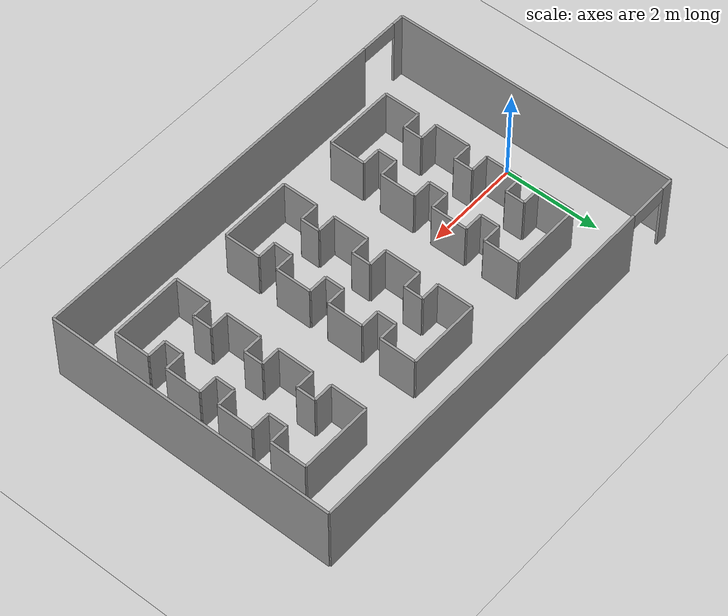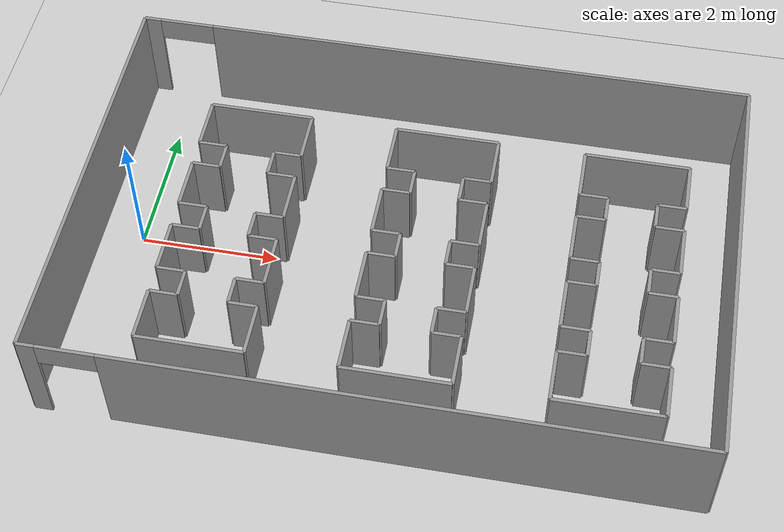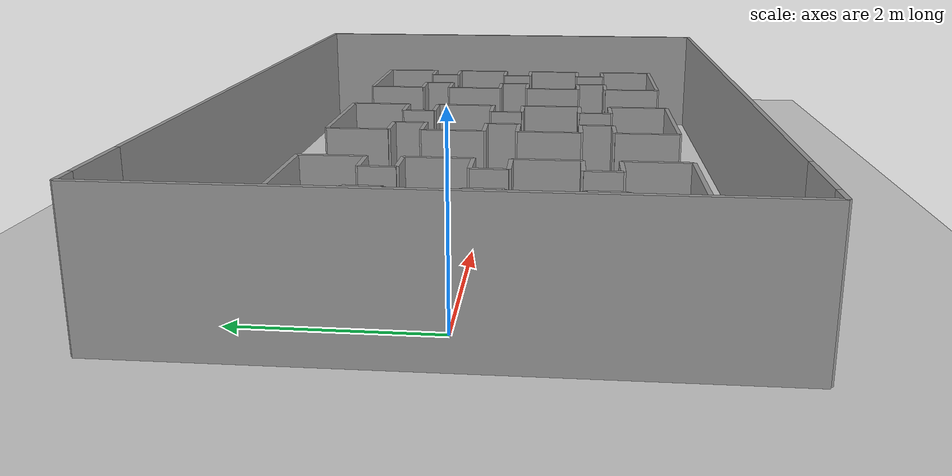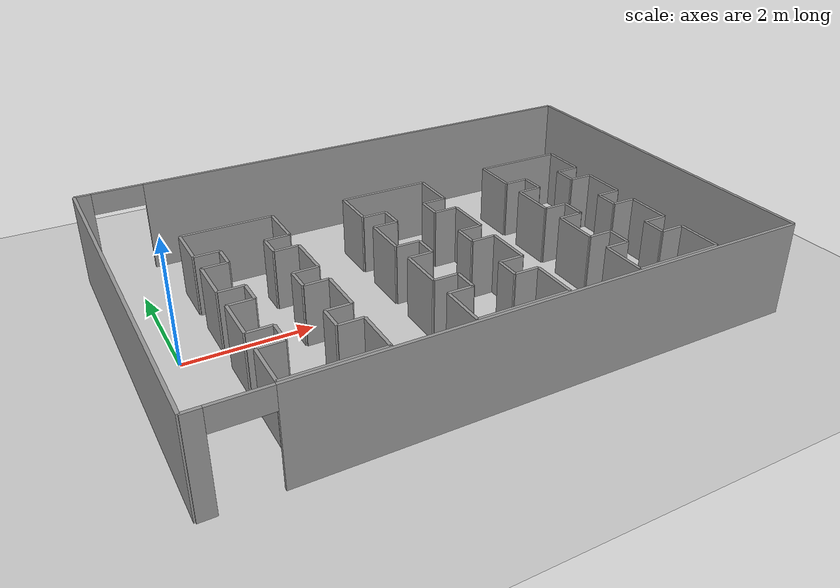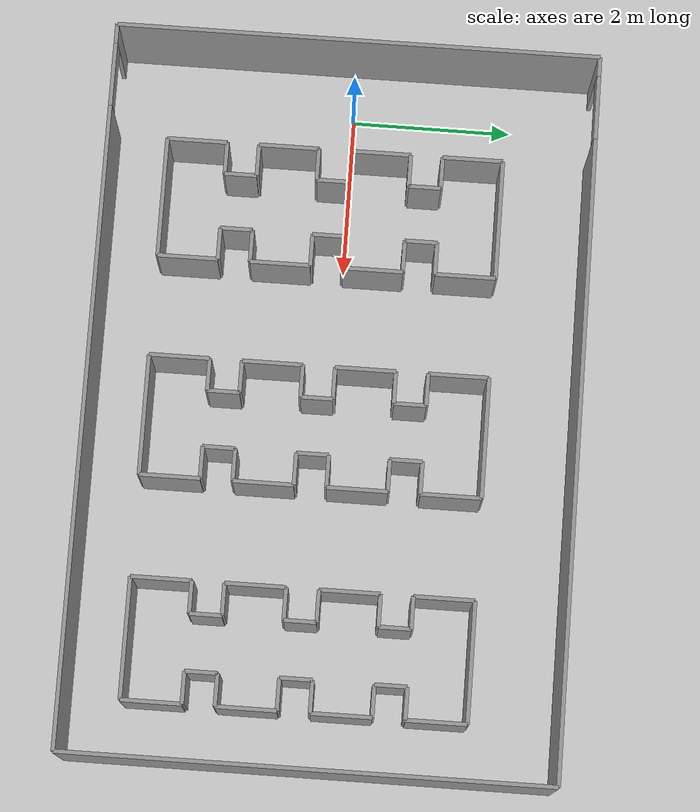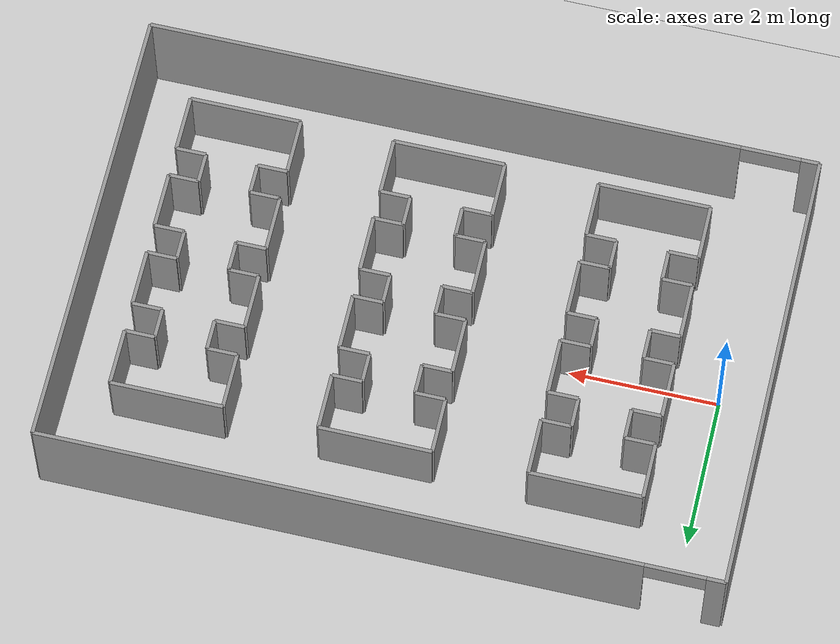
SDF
<sdf version="1.7">
 <world name="default">
  <light name="sun" type="directional">
   <pose>0 0 10 0 -0 0</pose>
   <diffuse>0.8 0.8 0.8 1</diffuse>
   <specular>0.2 0.2 0.2 1</specular>
   <attenuation>
    <range>1000</range>
    <constant>0.9</constant>
    <linear>0.01</linear>
    <quadratic>0.001</quadratic>
   </attenuation>
   <direction>-0.5 0.1 -0.9</direction>
   <spot><inner_angle>0</inner_angle><outer_angle>0</outer_angle><falloff>0</falloff></spot>
  </light>
  <model name="ground_plane">
   <static>1</static>
   <link name="link">
    <collision name="collision">
     <geometry><plane><normal>0 0 1</normal><size>100 100</size></plane></geometry>
     <surface>
      <contact><collide_bitmask>65535</collide_bitmask></contact>
      <friction><ode><mu>100</mu><mu2>50</mu2></ode></friction>
     </surface>
    </collision>
    <visual name="visual">
     <cast_shadows>0</cast_shadows>
     <geometry><plane><normal>0 0 1</normal><size>100 100</size></plane></geometry>
     <material>
      <script><uri>file://media/materials/scripts/gazebo.material</uri><name>Gazebo/Grey</name></script>
     </material>
    </visual>
   </link>
  </model>
  <gravity>0 0 -9.8</gravity>
  <magnetic_field>6e-06 2.3e-05 -4.2e-05</magnetic_field>
  <atmosphere type="adiabatic"/>
  <physics type="ode">
   <max_step_size>0.001</max_step_size>
   <real_time_factor>1</real_time_factor>
   <real_time_update_rate>1000</real_time_update_rate>
  </physics>
  <scene><ambient>0.4 0.4 0.4 1</ambient><background>0.7 0.7 0.7 1</background><shadows>1</shadows></scene>
  <audio><device>default</device></audio>
  <spherical_coordinates>
   <surface_model>EARTH_WGS84</surface_model>
   <latitude_deg>0</latitude_deg>
   <longitude_deg>0</longitude_deg>
   <elevation>0</elevation>
   <heading_deg>0</heading_deg>
  </spherical_coordinates>
  <model name="Storage_map">
   <pose>3.86 0 0 0 -0 0</pose>
   <static>1</static>
   <link name="Wall_up_1">
    <collision name="Wall_up_1_Collision">
     <geometry><box><size>0.25 0.05 1.5</size></box></geometry>
     <pose>-4.375 3 0.75 0 -0 0</pose>
    </collision>
    <visual name="Wall_up_1_Visual">
     <geometry><box><size>0.25 0.05 1.5</size></box></geometry>
     <pose>-4.375 3 0.75 0 -0 0</pose>
     <material>
      <script><uri>file://media/materials/scripts/gazebo.material</uri><name>Gazebo/Grey</name></script>
      <ambient>1 1 1 1</ambient>
     </material>
    </visual>
   </link>
   <link name="Wall_up_2">
    <collision name="Wall_up_2_Collision">
     <geometry><box><size>0.8 0.05 0.35</size></box></geometry>
     <pose>-3.85 3 1.325 0 -0 0</pose>
    </collision>
    <visual name="Wall_up_2_Visual">
     <geometry><box><size>0.8 0.05 0.35</size></box></geometry>
     <pose>-3.85 3 1.325 0 -0 0</pose>
     <material>
      <script><uri>file://media/materials/scripts/gazebo.material</uri><name>Gazebo/Grey</name></script>
      <ambient>1 1 1 1</ambient>
     </material>
    </visual>
   </link>
   <link name="Wall_up_3">
    <collision name="Wall_up_3_Collision">
     <geometry><box><size>7.95 0.05 1.5</size></box></geometry>
     <pose>0.525 3 0.75 0 -0 0</pose>
    </collision>
    <visual name="Wall_up_3_Visual">
     <geometry><box><size>7.95 0.05 1.5</size></box></geometry>
     <pose>0.525 3 0.75 0 -0 0</pose>
     <material>
      <script><uri>file://media/materials/scripts/gazebo.material</uri><name>Gazebo/Grey</name></script>
      <ambient>1 1 1 1</ambient>
     </material>
    </visual>
   </link>
   <link name="Wall_right">
    <collision name="Wall_right_Collision">
     <geometry><box><size>0.05 6 1.5</size></box></geometry>
     <pose>4.5 0 0.75 0 -0 0</pose>
    </collision>
    <visual name="Wall_right_Visual">
     <geometry><box><size>0.05 6 1.5</size></box></geometry>
     <pose>4.5 0 0.75 0 -0 0</pose>
     <material>
      <script><uri>file://media/materials/scripts/gazebo.material</uri><name>Gazebo/Grey</name></script>
      <ambient>1 1 1 1</ambient>
     </material>
    </visual>
   </link>
   <link name="Wall_down_1">
    <collision name="Wall_down_1_Collision">
     <geometry><box><size>7.95 0.05 1.5</size></box></geometry>
     <pose>0.525 -3 0.75 0 -0 0</pose>
    </collision>
    <visual name="Wall_down_1_Visual">
     <geometry><box><size>7.95 0.05 1.5</size></box></geometry>
     <pose>0.525 -3 0.75 0 -0 0</pose>
     <material>
      <script><uri>file://media/materials/scripts/gazebo.material</uri><name>Gazebo/Grey</name></script>
      <ambient>1 1 1 1</ambient>
     </material>
    </visual>
   </link>
   <link name="Wall_down_2">
    <collision name="Wall_down_2_Collision">
     <geometry><box><size>0.8 0.05 0.35</size></box></geometry>
     <pose>-3.85 -3 1.325 0 -0 0</pose>
    </collision>
    <visual name="Wall_down_2_Visual">
     <geometry><box><size>0.8 0.05 0.35</size></box></geometry>
     <pose>-3.85 -3 1.325 0 -0 0</pose>
     <material>
      <script><uri>file://media/materials/scripts/gazebo.material</uri><name>Gazebo/Grey</name></script>
      <ambient>1 1 1 1</ambient>
     </material>
    </visual>
   </link>
   <link name="Wall_down_3">
    <collision name="Wall_down_3_Collision">
     <geometry><box><size>0.25 0.05 1.5</size></box></geometry>
     <pose>-4.375 -3 0.75 0 -0 0</pose>
    </collision>
    <visual name="Wall_down_3_Visual">
     <geometry><box><size>0.25 0.05 1.5</size></box></geometry>
     <pose>-4.375 -3 0.75 0 -0 0</pose>
     <material>
      <script><uri>file://media/materials/scripts/gazebo.material</uri><name>Gazebo/Grey</name></script>
      <ambient>1 1 1 1</ambient>
     </material>
    </visual>
   </link>
   <link name="Wall_left">
    <collision name="Wall_left_Collision">
     <geometry><box><size>0.05 6 1.5</size></box></geometry>
     <pose>-4.5 0 0.75 0 -0 0</pose>
    </collision>
    <visual name="Wall_left_Visual">
     <geometry><box><size>0.05 6 1.5</size></box></geometry>
     <pose>-4.5 0 0.75 0 -0 0</pose>
     <material>
      <script><uri>file://media/materials/scripts/gazebo.material</uri><name>Gazebo/Grey</name></script>
      <ambient>1 1 1 1</ambient>
     </material>
    </visual>
   </link>
   <link name="Wall_shell_0_wall_0">
    <collision name="Wall_shell_0_wall_0_Collision">
     <geometry><box><size>1.5 0.05 1</size></box></geometry>
     <pose>-2.47 1.9 0.5 0 -0 0</pose>
    </collision>
    <visual name="Wall_shell_0_wall_0_Visual">
     <geometry><box><size>1.5 0.05 1</size></box></geometry>
     <pose>-2.47 1.9 0.5 0 -0 0</pose>
     <material>
      <script><uri>file://media/materials/scripts/gazebo.material</uri><name>Gazebo/Grey</name></script>
      <ambient>1 1 1 1</ambient>
     </material>
    </visual>
   </link>
   <link name="Wall_shell_0_wall_1">
    <collision name="Wall_shell_0_wall_1_Collision">
     <geometry><box><size>0.05 0.75 1</size></box></geometry>
     <pose>-1.72 1.525 0.5 0 -0 0</pose>
    </collision>
    <visual name="Wall_shell_0_wall_1_Visual">
     <geometry><box><size>0.05 0.75 1</size></box></geometry>
     <pose>-1.72 1.525 0.5 0 -0 0</pose>
     <material>
      <script><uri>file://media/materials/scripts/gazebo.material</uri><name>Gazebo/Grey</name></script>
      <ambient>1 1 1 1</ambient>
     </material>
    </visual>
   </link>
   <link name="Wall_shell_0_wall_2">
    <collision name="Wall_shell_0_wall_2_Collision">
     <geometry><box><size>0.4 0.05 1</size></box></geometry>
     <pose>-1.92 1.15 0.5 0 -0 0</pose>
    </collision>
    <visual name="Wall_shell_0_wall_2_Visual">
     <geometry><box><size>0.4 0.05 1</size></box></geometry>
     <pose>-1.92 1.15 0.5 0 -0 0</pose>
     <material>
      <script><uri>file://media/materials/scripts/gazebo.material</uri><name>Gazebo/Grey</name></script>
      <ambient>1 1 1 1</ambient>
     </material>
    </visual>
   </link>
   <link name="Wall_shell_0_wall_3">
    <collision name="Wall_shell_0_wall_3_Collision">
     <geometry><box><size>0.05 0.4 1</size></box></geometry>
     <pose>-2.12 0.95 0.5 0 -0 0</pose>
    </collision>
    <visual name="Wall_shell_0_wall_3_Visual">
     <geometry><box><size>0.05 0.4 1</size></box></geometry>
     <pose>-2.12 0.95 0.5 0 -0 0</pose>
     <material>
      <script><uri>file://media/materials/scripts/gazebo.material</uri><name>Gazebo/Grey</name></script>
      <ambient>1 1 1 1</ambient>
     </material>
    </visual>
   </link>
   <link name="Wall_shell_0_wall_4">
    <collision name="Wall_shell_0_wall_4_Collision">
     <geometry><box><size>0.4 0.05 1</size></box></geometry>
     <pose>-1.92 0.75 0.5 0 -0 0</pose>
    </collision>
    <visual name="Wall_shell_0_wall_4_Visual">
     <geometry><box><size>0.4 0.05 1</size></box></geometry>
     <pose>-1.92 0.75 0.5 0 -0 0</pose>
     <material>
      <script><uri>file://media/materials/scripts/gazebo.material</uri><name>Gazebo/Grey</name></script>
      <ambient>1 1 1 1</ambient>
     </material>
    </visual>
   </link>
   <link name="Wall_shell_0_wall_5">
    <collision name="Wall_shell_0_wall_5_Collision">
     <geometry><box><size>0.05 0.75 1</size></box></geometry>
     <pose>-1.72 0.375 0.5 0 -0 0</pose>
    </collision>
    <visual name="Wall_shell_0_wall_5_Visual">
     <geometry><box><size>0.05 0.75 1</size></box></geometry>
     <pose>-1.72 0.375 0.5 0 -0 0</pose>
     <material>
      <script><uri>file://media/materials/scripts/gazebo.material</uri><name>Gazebo/Grey</name></script>
      <ambient>1 1 1 1</ambient>
     </material>
    </visual>
   </link>
   <link name="Wall_shell_0_wall_6">
    <collision name="Wall_shell_0_wall_6_Collision">
     <geometry><box><size>0.4 0.05 1</size></box></geometry>
     <pose>-1.92 -0 0.5 0 -0 0</pose>
    </collision>
    <visual name="Wall_shell_0_wall_6_Visual">
     <geometry><box><size>0.4 0.05 1</size></box></geometry>
     <pose>-1.92 -0 0.5 0 -0 0</pose>
     <material>
      <script><uri>file://media/materials/scripts/gazebo.material</uri><name>Gazebo/Grey</name></script>
      <ambient>1 1 1 1</ambient>
     </material>
    </visual>
   </link>
   <link name="Wall_shell_0_wall_7">
    <collision name="Wall_shell_0_wall_7_Collision">
     <geometry><box><size>0.05 0.4 1</size></box></geometry>
     <pose>-2.12 -0.2 0.5 0 -0 0</pose>
    </collision>
    <visual name="Wall_shell_0_wall_7_Visual">
     <geometry><box><size>0.05 0.4 1</size></box></geometry>
     <pose>-2.12 -0.2 0.5 0 -0 0</pose>
     <material>
      <script><uri>file://media/materials/scripts/gazebo.material</uri><name>Gazebo/Grey</name></script>
      <ambient>1 1 1 1</ambient>
     </material>
    </visual>
   </link>
   <link name="Wall_shell_0_wall_8">
    <collision name="Wall_shell_0_wall_8_Collision">
     <geometry><box><size>0.4 0.05 1</size></box></geometry>
     <pose>-1.92 -0.4 0.5 0 -0 0</pose>
    </collision>
    <visual name="Wall_shell_0_wall_8_Visual">
     <geometry><box><size>0.4 0.05 1</size></box></geometry>
     <pose>-1.92 -0.4 0.5 0 -0 0</pose>
     <material>
      <script><uri>file://media/materials/scripts/gazebo.material</uri><name>Gazebo/Grey</name></script>
      <ambient>1 1 1 1</ambient>
     </material>
    </visual>
   </link>
   <link name="Wall_shell_0_wall_9">
    <collision name="Wall_shell_0_wall_9_Collision">
     <geometry><box><size>0.05 0.75 1</size></box></geometry>
     <pose>-1.72 -0.775 0.5 0 -0 0</pose>
    </collision>
    <visual name="Wall_shell_0_wall_9_Visual">
     <geometry><box><size>0.05 0.75 1</size></box></geometry>
     <pose>-1.72 -0.775 0.5 0 -0 0</pose>
     <material>
      <script><uri>file://media/materials/scripts/gazebo.material</uri><name>Gazebo/Grey</name></script>
      <ambient>1 1 1 1</ambient>
     </material>
    </visual>
   </link>
   <link name="Wall_shell_0_wall_10">
    <collision name="Wall_shell_0_wall_10_Collision">
     <geometry><box><size>0.4 0.05 1</size></box></geometry>
     <pose>-1.92 -1.15 0.5 0 -0 0</pose>
    </collision>
    <visual name="Wall_shell_0_wall_10_Visual">
     <geometry><box><size>0.4 0.05 1</size></box></geometry>
     <pose>-1.92 -1.15 0.5 0 -0 0</pose>
     <material>
      <script><uri>file://media/materials/scripts/gazebo.material</uri><name>Gazebo/Grey</name></script>
      <ambient>1 1 1 1</ambient>
     </material>
    </visual>
   </link>
   <link name="Wall_shell_0_wall_11">
    <collision name="Wall_shell_0_wall_11_Collision">
     <geometry><box><size>0.05 0.4 1</size></box></geometry>
     <pose>-2.12 -1.35 0.5 0 -0 0</pose>
    </collision>
    <visual name="Wall_shell_0_wall_11_Visual">
     <geometry><box><size>0.05 0.4 1</size></box></geometry>
     <pose>-2.12 -1.35 0.5 0 -0 0</pose>
     <material>
      <script><uri>file://media/materials/scripts/gazebo.material</uri><name>Gazebo/Grey</name></script>
      <ambient>1 1 1 1</ambient>
     </material>
    </visual>
   </link>
   <link name="Wall_shell_0_wall_12">
    <collision name="Wall_shell_0_wall_12_Collision">
     <geometry><box><size>0.4 0.05 1</size></box></geometry>
     <pose>-1.92 -1.55 0.5 0 -0 0</pose>
    </collision>
    <visual name="Wall_shell_0_wall_12_Visual">
     <geometry><box><size>0.4 0.05 1</size></box></geometry>
     <pose>-1.92 -1.55 0.5 0 -0 0</pose>
     <material>
      <script><uri>file://media/materials/scripts/gazebo.material</uri><name>Gazebo/Grey</name></script>
      <ambient>1 1 1 1</ambient>
     </material>
    </visual>
   </link>
   <link name="Wall_shell_0_wall_13">
    <collision name="Wall_shell_0_wall_13_Collision">
     <geometry><box><size>0.05 0.75 1</size></box></geometry>
     <pose>-1.72 -1.925 0.5 0 -0 0</pose>
    </collision>
    <visual name="Wall_shell_0_wall_13_Visual">
     <geometry><box><size>0.05 0.75 1</size></box></geometry>
     <pose>-1.72 -1.925 0.5 0 -0 0</pose>
     <material>
      <script><uri>file://media/materials/scripts/gazebo.material</uri><name>Gazebo/Grey</name></script>
      <ambient>1 1 1 1</ambient>
     </material>
    </visual>
   </link>
   <link name="Wall_shell_0_wall_14">
    <collision name="Wall_shell_0_wall_14_Collision">
     <geometry><box><size>1.5 0.05 1</size></box></geometry>
     <pose>-2.47 -2.3 0.5 0 -0 0</pose>
    </collision>
    <visual name="Wall_shell_0_wall_14_Visual">
     <geometry><box><size>1.5 0.05 1</size></box></geometry>
     <pose>-2.47 -2.3 0.5 0 -0 0</pose>
     <material>
      <script><uri>file://media/materials/scripts/gazebo.material</uri><name>Gazebo/Grey</name></script>
      <ambient>1 1 1 1</ambient>
     </material>
    </visual>
   </link>
   <link name="Wall_shell_0_wall_15">
    <collision name="Wall_shell_0_wall_15_Collision">
     <geometry><box><size>0.05 0.75 1</size></box></geometry>
     <pose>-3.22 -1.925 0.5 0 -0 0</pose>
    </collision>
    <visual name="Wall_shell_0_wall_15_Visual">
     <geometry><box><size>0.05 0.75 1</size></box></geometry>
     <pose>-3.22 -1.925 0.5 0 -0 0</pose>
     <material>
      <script><uri>file://media/materials/scripts/gazebo.material</uri><name>Gazebo/Grey</name></script>
      <ambient>1 1 1 1</ambient>
     </material>
    </visual>
   </link>
   <link name="Wall_shell_0_wall_16">
    <collision name="Wall_shell_0_wall_16_Collision">
     <geometry><box><size>0.4 0.05 1</size></box></geometry>
     <pose>-3.02 -1.55 0.5 0 -0 0</pose>
    </collision>
    <visual name="Wall_shell_0_wall_16_Visual">
     <geometry><box><size>0.4 0.05 1</size></box></geometry>
     <pose>-3.02 -1.55 0.5 0 -0 0</pose>
     <material>
      <script><uri>file://media/materials/scripts/gazebo.material</uri><name>Gazebo/Grey</name></script>
      <ambient>1 1 1 1</ambient>
     </material>
    </visual>
   </link>
   <link name="Wall_shell_0_wall_17">
    <collision name="Wall_shell_0_wall_17_Collision">
     <geometry><box><size>0.05 0.4 1</size></box></geometry>
     <pose>-2.82 -1.35 0.5 0 -0 0</pose>
    </collision>
    <visual name="Wall_shell_0_wall_17_Visual">
     <geometry><box><size>0.05 0.4 1</size></box></geometry>
     <pose>-2.82 -1.35 0.5 0 -0 0</pose>
     <material>
      <script><uri>file://media/materials/scripts/gazebo.material</uri><name>Gazebo/Grey</name></script>
      <ambient>1 1 1 1</ambient>
     </material>
    </visual>
   </link>
   <link name="Wall_shell_0_wall_18">
    <collision name="Wall_shell_0_wall_18_Collision">
     <geometry><box><size>0.4 0.05 1</size></box></geometry>
     <pose>-3.02 -1.15 0.5 0 -0 0</pose>
    </collision>
    <visual name="Wall_shell_0_wall_18_Visual">
     <geometry><box><size>0.4 0.05 1</size></box></geometry>
     <pose>-3.02 -1.15 0.5 0 -0 0</pose>
     <material>
      <script><uri>file://media/materials/scripts/gazebo.material</uri><name>Gazebo/Grey</name></script>
      <ambient>1 1 1 1</ambient>
     </material>
    </visual>
   </link>
   <link name="Wall_shell_0_wall_19">
    <collision name="Wall_shell_0_wall_19_Collision">
     <geometry><box><size>0.05 0.75 1</size></box></geometry>
     <pose>-3.22 -0.775 0.5 0 -0 0</pose>
    </collision>
    <visual name="Wall_shell_0_wall_19_Visual">
     <geometry><box><size>0.05 0.75 1</size></box></geometry>
     <pose>-3.22 -0.775 0.5 0 -0 0</pose>
     <material>
      <script><uri>file://media/materials/scripts/gazebo.material</uri><name>Gazebo/Grey</name></script>
      <ambient>1 1 1 1</ambient>
     </material>
    </visual>
   </link>
   <link name="Wall_shell_0_wall_20">
    <collision name="Wall_shell_0_wall_20_Collision">
     <geometry><box><size>0.4 0.05 1</size></box></geometry>
     <pose>-3.02 -0.4 0.5 0 -0 0</pose>
    </collision>
    <visual name="Wall_shell_0_wall_20_Visual">
     <geometry><box><size>0.4 0.05 1</size></box></geometry>
     <pose>-3.02 -0.4 0.5 0 -0 0</pose>
     <material>
      <script><uri>file://media/materials/scripts/gazebo.material</uri><name>Gazebo/Grey</name></script>
      <ambient>1 1 1 1</ambient>
     </material>
    </visual>
   </link>
   <link name="Wall_shell_0_wall_21">
    <collision name="Wall_shell_0_wall_21_Collision">
     <geometry><box><size>0.05 0.4 1</size></box></geometry>
     <pose>-2.82 -0.2 0.5 0 -0 0</pose>
    </collision>
    <visual name="Wall_shell_0_wall_21_Visual">
     <geometry><box><size>0.05 0.4 1</size></box></geometry>
     <pose>-2.82 -0.2 0.5 0 -0 0</pose>
     <material>
      <script><uri>file://media/materials/scripts/gazebo.material</uri><name>Gazebo/Grey</name></script>
      <ambient>1 1 1 1</ambient>
     </material>
    </visual>
   </link>
   <link name="Wall_shell_0_wall_22">
    <collision name="Wall_shell_0_wall_22_Collision">
     <geometry><box><size>0.4 0.05 1</size></box></geometry>
     <pose>-3.02 -0 0.5 0 -0 0</pose>
    </collision>
    <visual name="Wall_shell_0_wall_22_Visual">
     <geometry><box><size>0.4 0.05 1</size></box></geometry>
     <pose>-3.02 -0 0.5 0 -0 0</pose>
     <material>
      <script><uri>file://media/materials/scripts/gazebo.material</uri><name>Gazebo/Grey</name></script>
      <ambient>1 1 1 1</ambient>
     </material>
    </visual>
   </link>
   <link name="Wall_shell_0_wall_23">
    <collision name="Wall_shell_0_wall_23_Collision">
     <geometry><box><size>0.05 0.75 1</size></box></geometry>
     <pose>-3.22 0.375 0.5 0 -0 0</pose>
    </collision>
    <visual name="Wall_shell_0_wall_23_Visual">
     <geometry><box><size>0.05 0.75 1</size></box></geometry>
     <pose>-3.22 0.375 0.5 0 -0 0</pose>
     <material>
      <script><uri>file://media/materials/scripts/gazebo.material</uri><name>Gazebo/Grey</name></script>
      <ambient>1 1 1 1</ambient>
     </material>
    </visual>
   </link>
   <link name="Wall_shell_0_wall_24">
    <collision name="Wall_shell_0_wall_24_Collision">
     <geometry><box><size>0.4 0.05 1</size></box></geometry>
     <pose>-3.02 0.75 0.5 0 -0 0</pose>
    </collision>
    <visual name="Wall_shell_0_wall_24_Visual">
     <geometry><box><size>0.4 0.05 1</size></box></geometry>
     <pose>-3.02 0.75 0.5 0 -0 0</pose>
     <material>
      <script><uri>file://media/materials/scripts/gazebo.material</uri><name>Gazebo/Grey</name></script>
      <ambient>1 1 1 1</ambient>
     </material>
    </visual>
   </link>
   <link name="Wall_shell_0_wall_25">
    <collision name="Wall_shell_0_wall_25_Collision">
     <geometry><box><size>0.05 0.4 1</size></box></geometry>
     <pose>-2.82 0.95 0.5 0 -0 0</pose>
    </collision>
    <visual name="Wall_shell_0_wall_25_Visual">
     <geometry><box><size>0.05 0.4 1</size></box></geometry>
     <pose>-2.82 0.95 0.5 0 -0 0</pose>
     <material>
      <script><uri>file://media/materials/scripts/gazebo.material</uri><name>Gazebo/Grey</name></script>
      <ambient>1 1 1 1</ambient>
     </material>
    </visual>
   </link>
   <link name="Wall_shell_0_wall_26">
    <collision name="Wall_shell_0_wall_26_Collision">
     <geometry><box><size>0.4 0.05 1</size></box></geometry>
     <pose>-3.02 1.15 0.5 0 -0 0</pose>
    </collision>
    <visual name="Wall_shell_0_wall_26_Visual">
     <geometry><box><size>0.4 0.05 1</size></box></geometry>
     <pose>-3.02 1.15 0.5 0 -0 0</pose>
     <material>
      <script><uri>file://media/materials/scripts/gazebo.material</uri><name>Gazebo/Grey</name></script>
      <ambient>1 1 1 1</ambient>
     </material>
    </visual>
   </link>
   <link name="Wall_shell_0_wall_27">
    <collision name="Wall_shell_0_wall_27_Collision">
     <geometry><box><size>0.05 0.75 1</size></box></geometry>
     <pose>-3.22 1.525 0.5 0 -0 0</pose>
    </collision>
    <visual name="Wall_shell_0_wall_27_Visual">
     <geometry><box><size>0.05 0.75 1</size></box></geometry>
     <pose>-3.22 1.525 0.5 0 -0 0</pose>
     <material>
      <script><uri>file://media/materials/scripts/gazebo.material</uri><name>Gazebo/Grey</name></script>
      <ambient>1 1 1 1</ambient>
     </material>
    </visual>
   </link>
   <link name="Wall_shell_1_wall_0">
    <collision name="Wall_shell_1_wall_0_Collision">
     <geometry><box><size>1.5 0.05 1</size></box></geometry>
     <pose>0.29 1.9 0.5 0 -0 0</pose>
    </collision>
    <visual name="Wall_shell_1_wall_0_Visual">
     <geometry><box><size>1.5 0.05 1</size></box></geometry>
     <pose>0.29 1.9 0.5 0 -0 0</pose>
     <material>
      <script><uri>file://media/materials/scripts/gazebo.material</uri><name>Gazebo/Grey</name></script>
      <ambient>1 1 1 1</ambient>
     </material>
    </visual>
   </link>
   <link name="Wall_shell_1_wall_1">
    <collision name="Wall_shell_1_wall_1_Collision">
     <geometry><box><size>0.05 0.75 1</size></box></geometry>
     <pose>1.04 1.525 0.5 0 -0 0</pose>
    </collision>
    <visual name="Wall_shell_1_wall_1_Visual">
     <geometry><box><size>0.05 0.75 1</size></box></geometry>
     <pose>1.04 1.525 0.5 0 -0 0</pose>
     <material>
      <script><uri>file://media/materials/scripts/gazebo.material</uri><name>Gazebo/Grey</name></script>
      <ambient>1 1 1 1</ambient>
     </material>
    </visual>
   </link>
   <link name="Wall_shell_1_wall_2">
    <collision name="Wall_shell_1_wall_2_Collision">
     <geometry><box><size>0.4 0.05 1</size></box></geometry>
     <pose>0.84 1.15 0.5 0 -0 0</pose>
    </collision>
    <visual name="Wall_shell_1_wall_2_Visual">
     <geometry><box><size>0.4 0.05 1</size></box></geometry>
     <pose>0.84 1.15 0.5 0 -0 0</pose>
     <material>
      <script><uri>file://media/materials/scripts/gazebo.material</uri><name>Gazebo/Grey</name></script>
      <ambient>1 1 1 1</ambient>
     </material>
    </visual>
   </link>
   <link name="Wall_shell_1_wall_3">
    <collision name="Wall_shell_1_wall_3_Collision">
     <geometry><box><size>0.05 0.4 1</size></box></geometry>
     <pose>0.64 0.95 0.5 0 -0 0</pose>
    </collision>
    <visual name="Wall_shell_1_wall_3_Visual">
     <geometry><box><size>0.05 0.4 1</size></box></geometry>
     <pose>0.64 0.95 0.5 0 -0 0</pose>
     <material>
      <script><uri>file://media/materials/scripts/gazebo.material</uri><name>Gazebo/Grey</name></script>
      <ambient>1 1 1 1</ambient>
     </material>
    </visual>
   </link>
   <link name="Wall_shell_1_wall_4">
    <collision name="Wall_shell_1_wall_4_Collision">
     <geometry><box><size>0.4 0.05 1</size></box></geometry>
     <pose>0.84 0.75 0.5 0 -0 0</pose>
    </collision>
    <visual name="Wall_shell_1_wall_4_Visual">
     <geometry><box><size>0.4 0.05 1</size></box></geometry>
     <pose>0.84 0.75 0.5 0 -0 0</pose>
     <material>
      <script><uri>file://media/materials/scripts/gazebo.material</uri><name>Gazebo/Grey</name></script>
      <ambient>1 1 1 1</ambient>
     </material>
    </visual>
   </link>
   <link name="Wall_shell_1_wall_5">
    <collision name="Wall_shell_1_wall_5_Collision">
     <geometry><box><size>0.05 0.75 1</size></box></geometry>
     <pose>1.04 0.375 0.5 0 -0 0</pose>
    </collision>
    <visual name="Wall_shell_1_wall_5_Visual">
     <geometry><box><size>0.05 0.75 1</size></box></geometry>
     <pose>1.04 0.375 0.5 0 -0 0</pose>
     <material>
      <script><uri>file://media/materials/scripts/gazebo.material</uri><name>Gazebo/Grey</name></script>
      <ambient>1 1 1 1</ambient>
     </material>
    </visual>
   </link>
   <link name="Wall_shell_1_wall_6">
    <collision name="Wall_shell_1_wall_6_Collision">
     <geometry><box><size>0.4 0.05 1</size></box></geometry>
     <pose>0.84 -0 0.5 0 -0 0</pose>
    </collision>
    <visual name="Wall_shell_1_wall_6_Visual">
     <geometry><box><size>0.4 0.05 1</size></box></geometry>
     <pose>0.84 -0 0.5 0 -0 0</pose>
     <material>
      <script><uri>file://media/materials/scripts/gazebo.material</uri><name>Gazebo/Grey</name></script>
      <ambient>1 1 1 1</ambient>
     </material>
    </visual>
   </link>
   <link name="Wall_shell_1_wall_7">
    <collision name="Wall_shell_1_wall_7_Collision">
     <geometry><box><size>0.05 0.4 1</size></box></geometry>
     <pose>0.64 -0.2 0.5 0 -0 0</pose>
    </collision>
    <visual name="Wall_shell_1_wall_7_Visual">
     <geometry><box><size>0.05 0.4 1</size></box></geometry>
     <pose>0.64 -0.2 0.5 0 -0 0</pose>
     <material>
      <script><uri>file://media/materials/scripts/gazebo.material</uri><name>Gazebo/Grey</name></script>
      <ambient>1 1 1 1</ambient>
     </material>
    </visual>
   </link>
   <link name="Wall_shell_1_wall_8">
    <collision name="Wall_shell_1_wall_8_Collision">
     <geometry><box><size>0.4 0.05 1</size></box></geometry>
     <pose>0.84 -0.4 0.5 0 -0 0</pose>
    </collision>
    <visual name="Wall_shell_1_wall_8_Visual">
     <geometry><box><size>0.4 0.05 1</size></box></geometry>
     <pose>0.84 -0.4 0.5 0 -0 0</pose>
     <material>
      <script><uri>file://media/materials/scripts/gazebo.material</uri><name>Gazebo/Grey</name></script>
      <ambient>1 1 1 1</ambient>
     </material>
    </visual>
   </link>
   <link name="Wall_shell_1_wall_9">
    <collision name="Wall_shell_1_wall_9_Collision">
     <geometry><box><size>0.05 0.75 1</size></box></geometry>
     <pose>1.04 -0.775 0.5 0 -0 0</pose>
    </collision>
    <visual name="Wall_shell_1_wall_9_Visual">
     <geometry><box><size>0.05 0.75 1</size></box></geometry>
     <pose>1.04 -0.775 0.5 0 -0 0</pose>
     <material>
      <script><uri>file://media/materials/scripts/gazebo.material</uri><name>Gazebo/Grey</name></script>
      <ambient>1 1 1 1</ambient>
     </material>
    </visual>
   </link>
   <link name="Wall_shell_1_wall_10">
    <collision name="Wall_shell_1_wall_10_Collision">
     <geometry><box><size>0.4 0.05 1</size></box></geometry>
     <pose>0.84 -1.15 0.5 0 -0 0</pose>
    </collision>
    <visual name="Wall_shell_1_wall_10_Visual">
     <geometry><box><size>0.4 0.05 1</size></box></geometry>
     <pose>0.84 -1.15 0.5 0 -0 0</pose>
     <material>
      <script><uri>file://media/materials/scripts/gazebo.material</uri><name>Gazebo/Grey</name></script>
      <ambient>1 1 1 1</ambient>
     </material>
    </visual>
   </link>
   <link name="Wall_shell_1_wall_11">
    <collision name="Wall_shell_1_wall_11_Collision">
     <geometry><box><size>0.05 0.4 1</size></box></geometry>
     <pose>0.64 -1.35 0.5 0 -0 0</pose>
    </collision>
    <visual name="Wall_shell_1_wall_11_Visual">
     <geometry><box><size>0.05 0.4 1</size></box></geometry>
     <pose>0.64 -1.35 0.5 0 -0 0</pose>
     <material>
      <script><uri>file://media/materials/scripts/gazebo.material</uri><name>Gazebo/Grey</name></script>
      <ambient>1 1 1 1</ambient>
     </material>
    </visual>
   </link>
   <link name="Wall_shell_1_wall_12">
    <collision name="Wall_shell_1_wall_12_Collision">
     <geometry><box><size>0.4 0.05 1</size></box></geometry>
     <pose>0.84 -1.55 0.5 0 -0 0</pose>
    </collision>
    <visual name="Wall_shell_1_wall_12_Visual">
     <geometry><box><size>0.4 0.05 1</size></box></geometry>
     <pose>0.84 -1.55 0.5 0 -0 0</pose>
     <material>
      <script><uri>file://media/materials/scripts/gazebo.material</uri><name>Gazebo/Grey</name></script>
      <ambient>1 1 1 1</ambient>
     </material>
    </visual>
   </link>
   <link name="Wall_shell_1_wall_13">
    <collision name="Wall_shell_1_wall_13_Collision">
     <geometry><box><size>0.05 0.75 1</size></box></geometry>
     <pose>1.04 -1.925 0.5 0 -0 0</pose>
    </collision>
    <visual name="Wall_shell_1_wall_13_Visual">
     <geometry><box><size>0.05 0.75 1</size></box></geometry>
     <pose>1.04 -1.925 0.5 0 -0 0</pose>
     <material>
      <script><uri>file://media/materials/scripts/gazebo.material</uri><name>Gazebo/Grey</name></script>
      <ambient>1 1 1 1</ambient>
     </material>
    </visual>
   </link>
   <link name="Wall_shell_1_wall_14">
    <collision name="Wall_shell_1_wall_14_Collision">
     <geometry><box><size>1.5 0.05 1</size></box></geometry>
     <pose>0.29 -2.3 0.5 0 -0 0</pose>
    </collision>
    <visual name="Wall_shell_1_wall_14_Visual">
     <geometry><box><size>1.5 0.05 1</size></box></geometry>
     <pose>0.29 -2.3 0.5 0 -0 0</pose>
     <material>
      <script><uri>file://media/materials/scripts/gazebo.material</uri><name>Gazebo/Grey</name></script>
      <ambient>1 1 1 1</ambient>
     </material>
    </visual>
   </link>
   <link name="Wall_shell_1_wall_15">
    <collision name="Wall_shell_1_wall_15_Collision">
     <geometry><box><size>0.05 0.75 1</size></box></geometry>
     <pose>-0.46 -1.925 0.5 0 -0 0</pose>
    </collision>
    <visual name="Wall_shell_1_wall_15_Visual">
     <geometry><box><size>0.05 0.75 1</size></box></geometry>
     <pose>-0.46 -1.925 0.5 0 -0 0</pose>
     <material>
      <script><uri>file://media/materials/scripts/gazebo.material</uri><name>Gazebo/Grey</name></script>
      <ambient>1 1 1 1</ambient>
     </material>
    </visual>
   </link>
   <link name="Wall_shell_1_wall_16">
    <collision name="Wall_shell_1_wall_16_Collision">
     <geometry><box><size>0.4 0.05 1</size></box></geometry>
     <pose>-0.26 -1.55 0.5 0 -0 0</pose>
    </collision>
    <visual name="Wall_shell_1_wall_16_Visual">
     <geometry><box><size>0.4 0.05 1</size></box></geometry>
     <pose>-0.26 -1.55 0.5 0 -0 0</pose>
     <material>
      <script><uri>file://media/materials/scripts/gazebo.material</uri><name>Gazebo/Grey</name></script>
      <ambient>1 1 1 1</ambient>
     </material>
    </visual>
   </link>
   <link name="Wall_shell_1_wall_17">
    <collision name="Wall_shell_1_wall_17_Collision">
     <geometry><box><size>0.05 0.4 1</size></box></geometry>
     <pose>-0.06 -1.35 0.5 0 -0 0</pose>
    </collision>
    <visual name="Wall_shell_1_wall_17_Visual">
     <geometry><box><size>0.05 0.4 1</size></box></geometry>
     <pose>-0.06 -1.35 0.5 0 -0 0</pose>
     <material>
      <script><uri>file://media/materials/scripts/gazebo.material</uri><name>Gazebo/Grey</name></script>
      <ambient>1 1 1 1</ambient>
     </material>
    </visual>
   </link>
   <link name="Wall_shell_1_wall_18">
    <collision name="Wall_shell_1_wall_18_Collision">
     <geometry><box><size>0.4 0.05 1</size></box></geometry>
     <pose>-0.26 -1.15 0.5 0 -0 0</pose>
    </collision>
    <visual name="Wall_shell_1_wall_18_Visual">
     <geometry><box><size>0.4 0.05 1</size></box></geometry>
     <pose>-0.26 -1.15 0.5 0 -0 0</pose>
     <material>
      <script><uri>file://media/materials/scripts/gazebo.material</uri><name>Gazebo/Grey</name></script>
      <ambient>1 1 1 1</ambient>
     </material>
    </visual>
   </link>
   <link name="Wall_shell_1_wall_19">
    <collision name="Wall_shell_1_wall_19_Collision">
     <geometry><box><size>0.05 0.75 1</size></box></geometry>
     <pose>-0.46 -0.775 0.5 0 -0 0</pose>
    </collision>
    <visual name="Wall_shell_1_wall_19_Visual">
     <geometry><box><size>0.05 0.75 1</size></box></geometry>
     <pose>-0.46 -0.775 0.5 0 -0 0</pose>
     <material>
      <script><uri>file://media/materials/scripts/gazebo.material</uri><name>Gazebo/Grey</name></script>
      <ambient>1 1 1 1</ambient>
     </material>
    </visual>
   </link>
   <link name="Wall_shell_1_wall_20">
    <collision name="Wall_shell_1_wall_20_Collision">
     <geometry><box><size>0.4 0.05 1</size></box></geometry>
     <pose>-0.26 -0.4 0.5 0 -0 0</pose>
    </collision>
    <visual name="Wall_shell_1_wall_20_Visual">
     <geometry><box><size>0.4 0.05 1</size></box></geometry>
     <pose>-0.26 -0.4 0.5 0 -0 0</pose>
     <material>
      <script><uri>file://media/materials/scripts/gazebo.material</uri><name>Gazebo/Grey</name></script>
      <ambient>1 1 1 1</ambient>
     </material>
    </visual>
   </link>
   <link name="Wall_shell_1_wall_21">
    <collision name="Wall_shell_1_wall_21_Collision">
     <geometry><box><size>0.05 0.4 1</size></box></geometry>
     <pose>-0.06 -0.2 0.5 0 -0 0</pose>
    </collision>
    <visual name="Wall_shell_1_wall_21_Visual">
     <geometry><box><size>0.05 0.4 1</size></box></geometry>
     <pose>-0.06 -0.2 0.5 0 -0 0</pose>
     <material>
      <script><uri>file://media/materials/scripts/gazebo.material</uri><name>Gazebo/Grey</name></script>
      <ambient>1 1 1 1</ambient>
     </material>
    </visual>
   </link>
   <link name="Wall_shell_1_wall_22">
    <collision name="Wall_shell_1_wall_22_Collision">
     <geometry><box><size>0.4 0.05 1</size></box></geometry>
     <pose>-0.26 -0 0.5 0 -0 0</pose>
    </collision>
    <visual name="Wall_shell_1_wall_22_Visual">
     <geometry><box><size>0.4 0.05 1</size></box></geometry>
     <pose>-0.26 -0 0.5 0 -0 0</pose>
     <material>
      <script><uri>file://media/materials/scripts/gazebo.material</uri><name>Gazebo/Grey</name></script>
      <ambient>1 1 1 1</ambient>
     </material>
    </visual>
   </link>
   <link name="Wall_shell_1_wall_23">
    <collision name="Wall_shell_1_wall_23_Collision">
     <geometry><box><size>0.05 0.75 1</size></box></geometry>
     <pose>-0.46 0.375 0.5 0 -0 0</pose>
    </collision>
    <visual name="Wall_shell_1_wall_23_Visual">
     <geometry><box><size>0.05 0.75 1</size></box></geometry>
     <pose>-0.46 0.375 0.5 0 -0 0</pose>
     <material>
      <script><uri>file://media/materials/scripts/gazebo.material</uri><name>Gazebo/Grey</name></script>
      <ambient>1 1 1 1</ambient>
     </material>
    </visual>
   </link>
   <link name="Wall_shell_1_wall_24">
    <collision name="Wall_shell_1_wall_24_Collision">
     <geometry><box><size>0.4 0.05 1</size></box></geometry>
     <pose>-0.26 0.75 0.5 0 -0 0</pose>
    </collision>
    <visual name="Wall_shell_1_wall_24_Visual">
     <geometry><box><size>0.4 0.05 1</size></box></geometry>
     <pose>-0.26 0.75 0.5 0 -0 0</pose>
     <material>
      <script><uri>file://media/materials/scripts/gazebo.material</uri><name>Gazebo/Grey</name></script>
      <ambient>1 1 1 1</ambient>
     </material>
    </visual>
   </link>
   <link name="Wall_shell_1_wall_25">
    <collision name="Wall_shell_1_wall_25_Collision">
     <geometry><box><size>0.05 0.4 1</size></box></geometry>
     <pose>-0.06 0.95 0.5 0 -0 0</pose>
    </collision>
    <visual name="Wall_shell_1_wall_25_Visual">
     <geometry><box><size>0.05 0.4 1</size></box></geometry>
     <pose>-0.06 0.95 0.5 0 -0 0</pose>
     <material>
      <script><uri>file://media/materials/scripts/gazebo.material</uri><name>Gazebo/Grey</name></script>
      <ambient>1 1 1 1</ambient>
     </material>
    </visual>
   </link>
   <link name="Wall_shell_1_wall_26">
    <collision name="Wall_shell_1_wall_26_Collision">
     <geometry><box><size>0.4 0.05 1</size></box></geometry>
     <pose>-0.26 1.15 0.5 0 -0 0</pose>
    </collision>
    <visual name="Wall_shell_1_wall_26_Visual">
     <geometry><box><size>0.4 0.05 1</size></box></geometry>
     <pose>-0.26 1.15 0.5 0 -0 0</pose>
     <material>
      <script><uri>file://media/materials/scripts/gazebo.material</uri><name>Gazebo/Grey</name></script>
      <ambient>1 1 1 1</ambient>
     </material>
    </visual>
   </link>
   <link name="Wall_shell_1_wall_27">
    <collision name="Wall_shell_1_wall_27_Collision">
     <geometry><box><size>0.05 0.75 1</size></box></geometry>
     <pose>-0.46 1.525 0.5 0 -0 0</pose>
    </collision>
    <visual name="Wall_shell_1_wall_27_Visual">
     <geometry><box><size>0.05 0.75 1</size></box></geometry>
     <pose>-0.46 1.525 0.5 0 -0 0</pose>
     <material>
      <script><uri>file://media/materials/scripts/gazebo.material</uri><name>Gazebo/Grey</name></script>
      <ambient>1 1 1 1</ambient>
     </material>
    </visual>
   </link>
   <link name="Wall_shell_2_wall_0">
    <collision name="Wall_shell_2_wall_0_Collision">
     <geometry><box><size>1.5 0.05 1</size></box></geometry>
     <pose>3.05 1.9 0.5 0 -0 0</pose>
    </collision>
    <visual name="Wall_shell_2_wall_0_Visual">
     <geometry><box><size>1.5 0.05 1</size></box></geometry>
     <pose>3.05 1.9 0.5 0 -0 0</pose>
     <material>
      <script><uri>file://media/materials/scripts/gazebo.material</uri><name>Gazebo/Grey</name></script>
      <ambient>1 1 1 1</ambient>
     </material>
    </visual>
   </link>
   <link name="Wall_shell_2_wall_1">
    <collision name="Wall_shell_2_wall_1_Collision">
     <geometry><box><size>0.05 0.75 1</size></box></geometry>
     <pose>3.8 1.525 0.5 0 -0 0</pose>
    </collision>
    <visual name="Wall_shell_2_wall_1_Visual">
     <geometry><box><size>0.05 0.75 1</size></box></geometry>
     <pose>3.8 1.525 0.5 0 -0 0</pose>
     <material>
      <script><uri>file://media/materials/scripts/gazebo.material</uri><name>Gazebo/Grey</name></script>
      <ambient>1 1 1 1</ambient>
     </material>
    </visual>
   </link>
   <link name="Wall_shell_2_wall_2">
    <collision name="Wall_shell_2_wall_2_Collision">
     <geometry><box><size>0.4 0.05 1</size></box></geometry>
     <pose>3.6 1.15 0.5 0 -0 0</pose>
    </collision>
    <visual name="Wall_shell_2_wall_2_Visual">
     <geometry><box><size>0.4 0.05 1</size></box></geometry>
     <pose>3.6 1.15 0.5 0 -0 0</pose>
     <material>
      <script><uri>file://media/materials/scripts/gazebo.material</uri><name>Gazebo/Grey</name></script>
      <ambient>1 1 1 1</ambient>
     </material>
    </visual>
   </link>
   <link name="Wall_shell_2_wall_3">
    <collision name="Wall_shell_2_wall_3_Collision">
     <geometry><box><size>0.05 0.4 1</size></box></geometry>
     <pose>3.4 0.95 0.5 0 -0 0</pose>
    </collision>
    <visual name="Wall_shell_2_wall_3_Visual">
     <geometry><box><size>0.05 0.4 1</size></box></geometry>
     <pose>3.4 0.95 0.5 0 -0 0</pose>
     <material>
      <script><uri>file://media/materials/scripts/gazebo.material</uri><name>Gazebo/Grey</name></script>
      <ambient>1 1 1 1</ambient>
     </material>
    </visual>
   </link>
   <link name="Wall_shell_2_wall_4">
    <collision name="Wall_shell_2_wall_4_Collision">
     <geometry><box><size>0.4 0.05 1</size></box></geometry>
     <pose>3.6 0.75 0.5 0 -0 0</pose>
    </collision>
    <visual name="Wall_shell_2_wall_4_Visual">
     <geometry><box><size>0.4 0.05 1</size></box></geometry>
     <pose>3.6 0.75 0.5 0 -0 0</pose>
     <material>
      <script><uri>file://media/materials/scripts/gazebo.material</uri><name>Gazebo/Grey</name></script>
      <ambient>1 1 1 1</ambient>
     </material>
    </visual>
   </link>
   <link name="Wall_shell_2_wall_5">
    <collision name="Wall_shell_2_wall_5_Collision">
     <geometry><box><size>0.05 0.75 1</size></box></geometry>
     <pose>3.8 0.375 0.5 0 -0 0</pose>
    </collision>
    <visual name="Wall_shell_2_wall_5_Visual">
     <geometry><box><size>0.05 0.75 1</size></box></geometry>
     <pose>3.8 0.375 0.5 0 -0 0</pose>
     <material>
      <script><uri>file://media/materials/scripts/gazebo.material</uri><name>Gazebo/Grey</name></script>
      <ambient>1 1 1 1</ambient>
     </material>
    </visual>
   </link>
   <link name="Wall_shell_2_wall_6">
    <collision name="Wall_shell_2_wall_6_Collision">
     <geometry><box><size>0.4 0.05 1</size></box></geometry>
     <pose>3.6 -0 0.5 0 -0 0</pose>
    </collision>
    <visual name="Wall_shell_2_wall_6_Visual">
     <geometry><box><size>0.4 0.05 1</size></box></geometry>
     <pose>3.6 -0 0.5 0 -0 0</pose>
     <material>
      <script><uri>file://media/materials/scripts/gazebo.material</uri><name>Gazebo/Grey</name></script>
      <ambient>1 1 1 1</ambient>
     </material>
    </visual>
   </link>
   <link name="Wall_shell_2_wall_7">
    <collision name="Wall_shell_2_wall_7_Collision">
     <geometry><box><size>0.05 0.4 1</size></box></geometry>
     <pose>3.4 -0.2 0.5 0 -0 0</pose>
    </collision>
    <visual name="Wall_shell_2_wall_7_Visual">
     <geometry><box><size>0.05 0.4 1</size></box></geometry>
     <pose>3.4 -0.2 0.5 0 -0 0</pose>
     <material>
      <script><uri>file://media/materials/scripts/gazebo.material</uri><name>Gazebo/Grey</name></script>
      <ambient>1 1 1 1</ambient>
     </material>
    </visual>
   </link>
   <link name="Wall_shell_2_wall_8">
    <collision name="Wall_shell_2_wall_8_Collision">
     <geometry><box><size>0.4 0.05 1</size></box></geometry>
     <pose>3.6 -0.4 0.5 0 -0 0</pose>
    </collision>
    <visual name="Wall_shell_2_wall_8_Visual">
     <geometry><box><size>0.4 0.05 1</size></box></geometry>
     <pose>3.6 -0.4 0.5 0 -0 0</pose>
     <material>
      <script><uri>file://media/materials/scripts/gazebo.material</uri><name>Gazebo/Grey</name></script>
      <ambient>1 1 1 1</ambient>
     </material>
    </visual>
   </link>
   <link name="Wall_shell_2_wall_9">
    <collision name="Wall_shell_2_wall_9_Collision">
     <geometry><box><size>0.05 0.75 1</size></box></geometry>
     <pose>3.8 -0.775 0.5 0 -0 0</pose>
    </collision>
    <visual name="Wall_shell_2_wall_9_Visual">
     <geometry><box><size>0.05 0.75 1</size></box></geometry>
     <pose>3.8 -0.775 0.5 0 -0 0</pose>
     <material>
      <script><uri>file://media/materials/scripts/gazebo.material</uri><name>Gazebo/Grey</name></script>
      <ambient>1 1 1 1</ambient>
     </material>
    </visual>
   </link>
   <link name="Wall_shell_2_wall_10">
    <collision name="Wall_shell_2_wall_10_Collision">
     <geometry><box><size>0.4 0.05 1</size></box></geometry>
     <pose>3.6 -1.15 0.5 0 -0 0</pose>
    </collision>
    <visual name="Wall_shell_2_wall_10_Visual">
     <geometry><box><size>0.4 0.05 1</size></box></geometry>
     <pose>3.6 -1.15 0.5 0 -0 0</pose>
     <material>
      <script><uri>file://media/materials/scripts/gazebo.material</uri><name>Gazebo/Grey</name></script>
      <ambient>1 1 1 1</ambient>
     </material>
    </visual>
   </link>
   <link name="Wall_shell_2_wall_11">
    <collision name="Wall_shell_2_wall_11_Collision">
     <geometry><box><size>0.05 0.4 1</size></box></geometry>
     <pose>3.4 -1.35 0.5 0 -0 0</pose>
    </collision>
    <visual name="Wall_shell_2_wall_11_Visual">
     <geometry><box><size>0.05 0.4 1</size></box></geometry>
     <pose>3.4 -1.35 0.5 0 -0 0</pose>
     <material>
      <script><uri>file://media/materials/scripts/gazebo.material</uri><name>Gazebo/Grey</name></script>
      <ambient>1 1 1 1</ambient>
     </material>
    </visual>
   </link>
   <link name="Wall_shell_2_wall_12">
    <collision name="Wall_shell_2_wall_12_Collision">
     <geometry><box><size>0.4 0.05 1</size></box></geometry>
     <pose>3.6 -1.55 0.5 0 -0 0</pose>
    </collision>
    <visual name="Wall_shell_2_wall_12_Visual">
     <geometry><box><size>0.4 0.05 1</size></box></geometry>
     <pose>3.6 -1.55 0.5 0 -0 0</pose>
     <material>
      <script><uri>file://media/materials/scripts/gazebo.material</uri><name>Gazebo/Grey</name></script>
      <ambient>1 1 1 1</ambient>
     </material>
    </visual>
   </link>
   <link name="Wall_shell_2_wall_13">
    <collision name="Wall_shell_2_wall_13_Collision">
     <geometry><box><size>0.05 0.75 1</size></box></geometry>
     <pose>3.8 -1.925 0.5 0 -0 0</pose>
    </collision>
    <visual name="Wall_shell_2_wall_13_Visual">
     <geometry><box><size>0.05 0.75 1</size></box></geometry>
     <pose>3.8 -1.925 0.5 0 -0 0</pose>
     <material>
      <script><uri>file://media/materials/scripts/gazebo.material</uri><name>Gazebo/Grey</name></script>
      <ambient>1 1 1 1</ambient>
     </material>
    </visual>
   </link>
   <link name="Wall_shell_2_wall_14">
    <collision name="Wall_shell_2_wall_14_Collision">
     <geometry><box><size>1.5 0.05 1</size></box></geometry>
     <pose>3.05 -2.3 0.5 0 -0 0</pose>
    </collision>
    <visual name="Wall_shell_2_wall_14_Visual">
     <geometry><box><size>1.5 0.05 1</size></box></geometry>
     <pose>3.05 -2.3 0.5 0 -0 0</pose>
     <material>
      <script><uri>file://media/materials/scripts/gazebo.material</uri><name>Gazebo/Grey</name></script>
      <ambient>1 1 1 1</ambient>
     </material>
    </visual>
   </link>
   <link name="Wall_shell_2_wall_15">
    <collision name="Wall_shell_2_wall_15_Collision">
     <geometry><box><size>0.05 0.75 1</size></box></geometry>
     <pose>2.3 -1.925 0.5 0 -0 0</pose>
    </collision>
    <visual name="Wall_shell_2_wall_15_Visual">
     <geometry><box><size>0.05 0.75 1</size></box></geometry>
     <pose>2.3 -1.925 0.5 0 -0 0</pose>
     <material>
      <script><uri>file://media/materials/scripts/gazebo.material</uri><name>Gazebo/Grey</name></script>
      <ambient>1 1 1 1</ambient>
     </material>
    </visual>
   </link>
   <link name="Wall_shell_2_wall_16">
    <collision name="Wall_shell_2_wall_16_Collision">
     <geometry><box><size>0.4 0.05 1</size></box></geometry>
     <pose>2.5 -1.55 0.5 0 -0 0</pose>
    </collision>
    <visual name="Wall_shell_2_wall_16_Visual">
     <geometry><box><size>0.4 0.05 1</size></box></geometry>
     <pose>2.5 -1.55 0.5 0 -0 0</pose>
     <material>
      <script><uri>file://media/materials/scripts/gazebo.material</uri><name>Gazebo/Grey</name></script>
      <ambient>1 1 1 1</ambient>
     </material>
    </visual>
   </link>
   <link name="Wall_shell_2_wall_17">
    <collision name="Wall_shell_2_wall_17_Collision">
     <geometry><box><size>0.05 0.4 1</size></box></geometry>
     <pose>2.7 -1.35 0.5 0 -0 0</pose>
    </collision>
    <visual name="Wall_shell_2_wall_17_Visual">
     <geometry><box><size>0.05 0.4 1</size></box></geometry>
     <pose>2.7 -1.35 0.5 0 -0 0</pose>
     <material>
      <script><uri>file://media/materials/scripts/gazebo.material</uri><name>Gazebo/Grey</name></script>
      <ambient>1 1 1 1</ambient>
     </material>
    </visual>
   </link>
   <link name="Wall_shell_2_wall_18">
    <collision name="Wall_shell_2_wall_18_Collision">
     <geometry><box><size>0.4 0.05 1</size></box></geometry>
     <pose>2.5 -1.15 0.5 0 -0 0</pose>
    </collision>
    <visual name="Wall_shell_2_wall_18_Visual">
     <geometry><box><size>0.4 0.05 1</size></box></geometry>
     <pose>2.5 -1.15 0.5 0 -0 0</pose>
     <material>
      <script><uri>file://media/materials/scripts/gazebo.material</uri><name>Gazebo/Grey</name></script>
      <ambient>1 1 1 1</ambient>
     </material>
    </visual>
   </link>
   <link name="Wall_shell_2_wall_19">
    <collision name="Wall_shell_2_wall_19_Collision">
     <geometry><box><size>0.05 0.75 1</size></box></geometry>
     <pose>2.3 -0.775 0.5 0 -0 0</pose>
    </collision>
    <visual name="Wall_shell_2_wall_19_Visual">
     <geometry><box><size>0.05 0.75 1</size></box></geometry>
     <pose>2.3 -0.775 0.5 0 -0 0</pose>
     <material>
      <script><uri>file://media/materials/scripts/gazebo.material</uri><name>Gazebo/Grey</name></script>
      <ambient>1 1 1 1</ambient>
     </material>
    </visual>
   </link>
   <link name="Wall_shell_2_wall_20">
    <collision name="Wall_shell_2_wall_20_Collision">
     <geometry><box><size>0.4 0.05 1</size></box></geometry>
     <pose>2.5 -0.4 0.5 0 -0 0</pose>
    </collision>
    <visual name="Wall_shell_2_wall_20_Visual">
     <geometry><box><size>0.4 0.05 1</size></box></geometry>
     <pose>2.5 -0.4 0.5 0 -0 0</pose>
     <material>
      <script><uri>file://media/materials/scripts/gazebo.material</uri><name>Gazebo/Grey</name></script>
      <ambient>1 1 1 1</ambient>
     </material>
    </visual>
   </link>
   <link name="Wall_shell_2_wall_21">
    <collision name="Wall_shell_2_wall_21_Collision">
     <geometry><box><size>0.05 0.4 1</size></box></geometry>
     <pose>2.7 -0.2 0.5 0 -0 0</pose>
    </collision>
    <visual name="Wall_shell_2_wall_21_Visual">
     <geometry><box><size>0.05 0.4 1</size></box></geometry>
     <pose>2.7 -0.2 0.5 0 -0 0</pose>
     <material>
      <script><uri>file://media/materials/scripts/gazebo.material</uri><name>Gazebo/Grey</name></script>
      <ambient>1 1 1 1</ambient>
     </material>
    </visual>
   </link>
   <link name="Wall_shell_2_wall_22">
    <collision name="Wall_shell_2_wall_22_Collision">
     <geometry><box><size>0.4 0.05 1</size></box></geometry>
     <pose>2.5 -0 0.5 0 -0 0</pose>
    </collision>
    <visual name="Wall_shell_2_wall_22_Visual">
     <geometry><box><size>0.4 0.05 1</size></box></geometry>
     <pose>2.5 -0 0.5 0 -0 0</pose>
     <material>
      <script><uri>file://media/materials/scripts/gazebo.material</uri><name>Gazebo/Grey</name></script>
      <ambient>1 1 1 1</ambient>
     </material>
    </visual>
   </link>
   <link name="Wall_shell_2_wall_23">
    <collision name="Wall_shell_2_wall_23_Collision">
     <geometry><box><size>0.05 0.75 1</size></box></geometry>
     <pose>2.3 0.375 0.5 0 -0 0</pose>
    </collision>
    <visual name="Wall_shell_2_wall_23_Visual">
     <geometry><box><size>0.05 0.75 1</size></box></geometry>
     <pose>2.3 0.375 0.5 0 -0 0</pose>
     <material>
      <script><uri>file://media/materials/scripts/gazebo.material</uri><name>Gazebo/Grey</name></script>
      <ambient>1 1 1 1</ambient>
     </material>
    </visual>
   </link>
   <link name="Wall_shell_2_wall_24">
    <collision name="Wall_shell_2_wall_24_Collision">
     <geometry><box><size>0.4 0.05 1</size></box></geometry>
     <pose>2.5 0.75 0.5 0 -0 0</pose>
    </collision>
    <visual name="Wall_shell_2_wall_24_Visual">
     <geometry><box><size>0.4 0.05 1</size></box></geometry>
     <pose>2.5 0.75 0.5 0 -0 0</pose>
     <material>
      <script><uri>file://media/materials/scripts/gazebo.material</uri><name>Gazebo/Grey</name></script>
      <ambient>1 1 1 1</ambient>
     </material>
    </visual>
   </link>
   <link name="Wall_shell_2_wall_25">
    <collision name="Wall_shell_2_wall_25_Collision">
     <geometry><box><size>0.05 0.4 1</size></box></geometry>
     <pose>2.7 0.95 0.5 0 -0 0</pose>
    </collision>
    <visual name="Wall_shell_2_wall_25_Visual">
     <geometry><box><size>0.05 0.4 1</size></box></geometry>
     <pose>2.7 0.95 0.5 0 -0 0</pose>
     <material>
      <script><uri>file://media/materials/scripts/gazebo.material</uri><name>Gazebo/Grey</name></script>
      <ambient>1 1 1 1</ambient>
     </material>
    </visual>
   </link>
   <link name="Wall_shell_2_wall_26">
    <collision name="Wall_shell_2_wall_26_Collision">
     <geometry><box><size>0.4 0.05 1</size></box></geometry>
     <pose>2.5 1.15 0.5 0 -0 0</pose>
    </collision>
    <visual name="Wall_shell_2_wall_26_Visual">
     <geometry><box><size>0.4 0.05 1</size></box></geometry>
     <pose>2.5 1.15 0.5 0 -0 0</pose>
     <material>
      <script><uri>file://media/materials/scripts/gazebo.material</uri><name>Gazebo/Grey</name></script>
      <ambient>1 1 1 1</ambient>
     </material>
    </visual>
   </link>
   <link name="Wall_shell_2_wall_27">
    <collision name="Wall_shell_2_wall_27_Collision">
     <geometry><box><size>0.05 0.75 1</size></box></geometry>
     <pose>2.3 1.525 0.5 0 -0 0</pose>
    </collision>
    <visual name="Wall_shell_2_wall_27_Visual">
     <geometry><box><size>0.05 0.75 1</size></box></geometry>
     <pose>2.3 1.525 0.5 0 -0 0</pose>
     <material>
      <script><uri>file://media/materials/scripts/gazebo.material</uri><name>Gazebo/Grey</name></script>
      <ambient>1 1 1 1</ambient>
     </material>
    </visual>
   </link>
  </model>
 </world>
</sdf>
